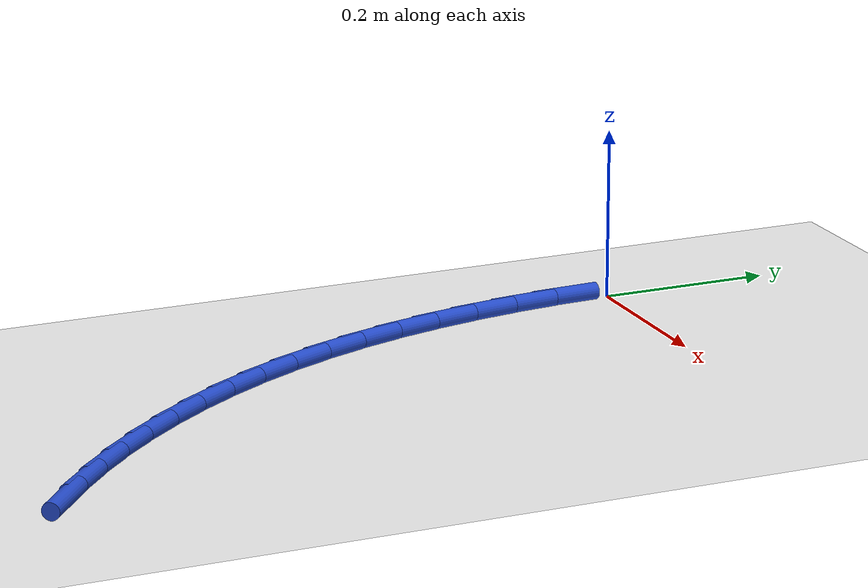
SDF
<sdf version="1.6">
 <world name="default">
  <model name="ground_plane">
   <static>1</static>
   <link name="link">
    <collision name="collision">
     <geometry><plane><normal>0 0 1</normal><size>100 100</size></plane></geometry>
     <surface><friction><ode><mu>100</mu><mu2>50</mu2></ode></friction></surface>
    </collision>
    <visual name="visual">
     <cast_shadows>0</cast_shadows>
     <geometry><plane><normal>0 0 1</normal><size>100 100</size></plane></geometry>
     <material>
      <script><uri>file://media/materials/scripts/gazebo.material</uri><name>Gazebo/WhiteGlow</name></script>
     </material>
    </visual>
   </link>
  </model>
  <model name="line">
   <link name="link_123">
    <pose>0.39826494016878217 -0.7992838695768381 0.01 0 1.57 -0.6878958292355195</pose>
    <collision name="collision">
     <geometry><cylinder><radius>0.01</radius><length>0.08</length></cylinder></geometry>
    </collision>
    <visual name="visual">
     <material>
      <script><name>Gazebo/Blue</name><uri>file://media/materials/scripts/gazebo.material</uri></script>
     </material>
     <geometry><cylinder><radius>0.01</radius><length>0.08</length></cylinder></geometry>
    </visual>
   </link>
   <link name="link_124">
    <pose>0.35698623832247467 -0.7653608365881075 0.01 0 1.57 -0.7374034319981893</pose>
    <collision name="collision">
     <geometry><cylinder><radius>0.01</radius><length>0.08</length></cylinder></geometry>
    </collision>
    <visual name="visual">
     <material>
      <script><name>Gazebo/Blue</name><uri>file://media/materials/scripts/gazebo.material</uri></script>
     </material>
     <geometry><cylinder><radius>0.01</radius><length>0.08</length></cylinder></geometry>
    </visual>
   </link>
   <link name="link_125">
    <pose>0.31705764207527404 -0.7290921204831797 0.01 0 1.57 -0.7867948477522309</pose>
    <collision name="collision">
     <geometry><cylinder><radius>0.01</radius><length>0.08</length></cylinder></geometry>
    </collision>
    <visual name="visual">
     <material>
      <script><name>Gazebo/Blue</name><uri>file://media/materials/scripts/gazebo.material</uri></script>
     </material>
     <geometry><cylinder><radius>0.01</radius><length>0.08</length></cylinder></geometry>
    </visual>
   </link>
   <link name="link_126">
    <pose>0.2786930214426449 -0.6906201833626797 0.01 0 1.57 -0.8363960528936378</pose>
    <collision name="collision">
     <geometry><cylinder><radius>0.01</radius><length>0.08</length></cylinder></geometry>
    </collision>
    <visual name="visual">
     <material>
      <script><name>Gazebo/Blue</name><uri>file://media/materials/scripts/gazebo.material</uri></script>
     </material>
     <geometry><cylinder><radius>0.01</radius><length>0.08</length></cylinder></geometry>
    </visual>
   </link>
   <link name="link_127">
    <pose>0.24210897849522248 -0.6501006060941608 0.01 0 1.57 -0.886672906228799</pose>
    <collision name="collision">
     <geometry><cylinder><radius>0.01</radius><length>0.08</length></cylinder></geometry>
    </collision>
    <visual name="visual">
     <material>
      <script><name>Gazebo/Blue</name><uri>file://media/materials/scripts/gazebo.material</uri></script>
     </material>
     <geometry><cylinder><radius>0.01</radius><length>0.08</length></cylinder></geometry>
    </visual>
   </link>
   <link name="link_128">
    <pose>0.20752211530364043 -0.6076889695451748 0.01 0 1.57 -0.9380799412407599</pose>
    <collision name="collision">
     <geometry><cylinder><radius>0.01</radius><length>0.08</length></cylinder></geometry>
    </collision>
    <visual name="visual">
     <material>
      <script><name>Gazebo/Blue</name><uri>file://media/materials/scripts/gazebo.material</uri></script>
     </material>
     <geometry><cylinder><radius>0.01</radius><length>0.08</length></cylinder></geometry>
    </visual>
   </link>
   <link name="link_129">
    <pose>0.17514903393853298 -0.5635408545832743 0.01 0 1.57 -0.9910642633049827</pose>
    <collision name="collision">
     <geometry><cylinder><radius>0.01</radius><length>0.08</length></cylinder></geometry>
    </collision>
    <visual name="visual">
     <material>
      <script><name>Gazebo/Blue</name><uri>file://media/materials/scripts/gazebo.material</uri></script>
     </material>
     <geometry><cylinder><radius>0.01</radius><length>0.08</length></cylinder></geometry>
    </visual>
   </link>
   <link name="link_130">
    <pose>0.14520633647053435 -0.5178118420760113 0.01 0 1.57 -1.0460666841511506</pose>
    <collision name="collision">
     <geometry><cylinder><radius>0.01</radius><length>0.08</length></cylinder></geometry>
    </collision>
    <visual name="visual">
     <material>
      <script><name>Gazebo/Blue</name><uri>file://media/materials/scripts/gazebo.material</uri></script>
     </material>
     <geometry><cylinder><radius>0.01</radius><length>0.08</length></cylinder></geometry>
    </visual>
   </link>
   <link name="link_131">
    <pose>0.11791062497027834 -0.4706575128909375 0.01 0 1.57 -1.1035100343923634</pose>
    <collision name="collision">
     <geometry><cylinder><radius>0.01</radius><length>0.08</length></cylinder></geometry>
    </collision>
    <visual name="visual">
     <material>
      <script><name>Gazebo/Blue</name><uri>file://media/materials/scripts/gazebo.material</uri></script>
     </material>
     <geometry><cylinder><radius>0.01</radius><length>0.08</length></cylinder></geometry>
    </visual>
   </link>
   <link name="link_132">
    <pose>0.09347784491058522 -0.4222332589287146 0.01 0 1.57 -1.1624768385325042</pose>
    <collision name="collision">
     <geometry><cylinder><radius>0.01</radius><length>0.08</length></cylinder></geometry>
    </collision>
    <visual name="visual">
     <material>
      <script><name>Gazebo/Blue</name><uri>file://media/materials/scripts/gazebo.material</uri></script>
     </material>
     <geometry><cylinder><radius>0.01</radius><length>0.08</length></cylinder></geometry>
    </visual>
   </link>
   <link name="link_133">
    <pose>0.07203451207934332 -0.3726687344935038 0.01 0 1.57 -1.2203346138639966</pose>
    <collision name="collision">
     <geometry><cylinder><radius>0.01</radius><length>0.08</length></cylinder></geometry>
    </collision>
    <visual name="visual">
     <material>
      <script><name>Gazebo/Blue</name><uri>file://media/materials/scripts/gazebo.material</uri></script>
     </material>
     <geometry><cylinder><radius>0.01</radius><length>0.08</length></cylinder></geometry>
    </visual>
   </link>
   <link name="link_134">
    <pose>0.05352781102797756 -0.32204198289466957 0.01 0 1.57 -1.2765128927820093</pose>
    <collision name="collision">
     <geometry><cylinder><radius>0.01</radius><length>0.08</length></cylinder></geometry>
    </collision>
    <visual name="visual">
     <material>
      <script><name>Gazebo/Blue</name><uri>file://media/materials/scripts/gazebo.material</uri></script>
     </material>
     <geometry><cylinder><radius>0.01</radius><length>0.08</length></cylinder></geometry>
    </visual>
   </link>
   <link name="link_135">
    <pose>0.03788351189760946 -0.270424884438183 0.01 0 1.57 -1.330799975675699</pose>
    <collision name="collision">
     <geometry><cylinder><radius>0.01</radius><length>0.08</length></cylinder></geometry>
    </collision>
    <visual name="visual">
     <material>
      <script><name>Gazebo/Blue</name><uri>file://media/materials/scripts/gazebo.material</uri></script>
     </material>
     <geometry><cylinder><radius>0.01</radius><length>0.08</length></cylinder></geometry>
    </visual>
   </link>
   <link name="link_136">
    <pose>0.025027384829361295 -0.2178893194300179 0.01 0 1.57 -1.383042043988005</pose>
    <collision name="collision">
     <geometry><cylinder><radius>0.01</radius><length>0.08</length></cylinder></geometry>
    </collision>
    <visual name="visual">
     <material>
      <script><name>Gazebo/Blue</name><uri>file://media/materials/scripts/gazebo.material</uri></script>
     </material>
     <geometry><cylinder><radius>0.01</radius><length>0.08</length></cylinder></geometry>
    </visual>
   </link>
   <link name="link_137">
    <pose>0.014885199964354529 -0.16450716817614522 0.01 0 1.57 -1.43314018712702</pose>
    <collision name="collision">
     <geometry><cylinder><radius>0.01</radius><length>0.08</length></cylinder></geometry>
    </collision>
    <visual name="visual">
     <material>
      <script><name>Gazebo/Blue</name><uri>file://media/materials/scripts/gazebo.material</uri></script>
     </material>
     <geometry><cylinder><radius>0.01</radius><length>0.08</length></cylinder></geometry>
    </visual>
   </link>
   <link name="link_138">
    <pose>0.007382727443710884 -0.11035031098253681 0.01 0 1.57 -1.4810450493795455</pose>
    <collision name="collision">
     <geometry><cylinder><radius>0.01</radius><length>0.08</length></cylinder></geometry>
    </collision>
    <visual name="visual">
     <material>
      <script><name>Gazebo/Blue</name><uri>file://media/materials/scripts/gazebo.material</uri></script>
     </material>
     <geometry><cylinder><radius>0.01</radius><length>0.08</length></cylinder></geometry>
    </visual>
   </link>
   <link name="link_139">
    <pose>0.0024457374085521373 -0.055490628155164805 0.01 0 1.57 -1.5267500500160176</pose>
    <collision name="collision">
     <geometry><cylinder><radius>0.01</radius><length>0.08</length></cylinder></geometry>
    </collision>
    <visual name="visual">
     <material>
      <script><name>Gazebo/Blue</name><uri>file://media/materials/scripts/gazebo.material</uri></script>
     </material>
     <geometry><cylinder><radius>0.01</radius><length>0.08</length></cylinder></geometry>
    </visual>
   </link>
  </model>
 </world>
</sdf>
